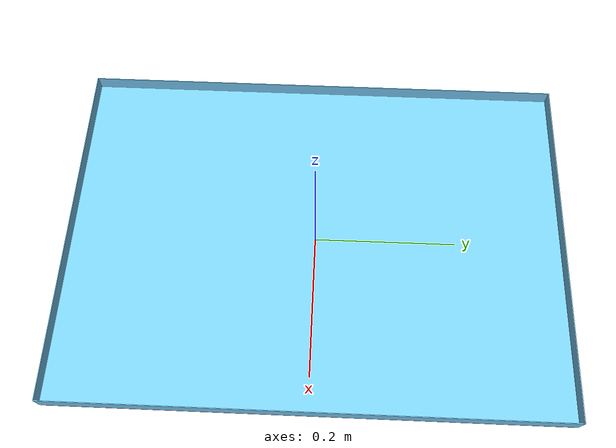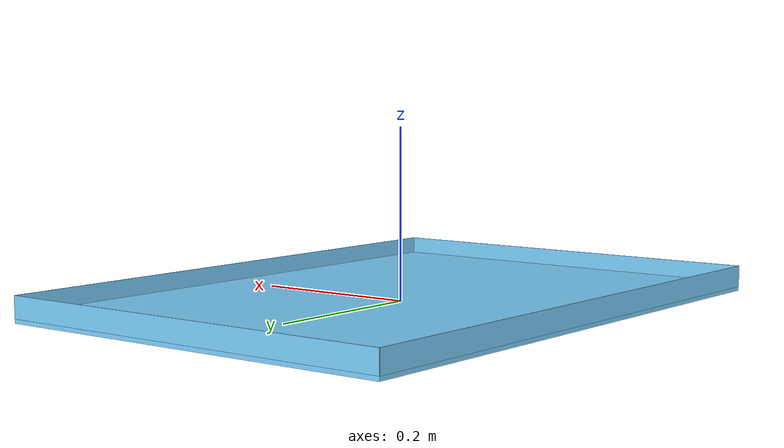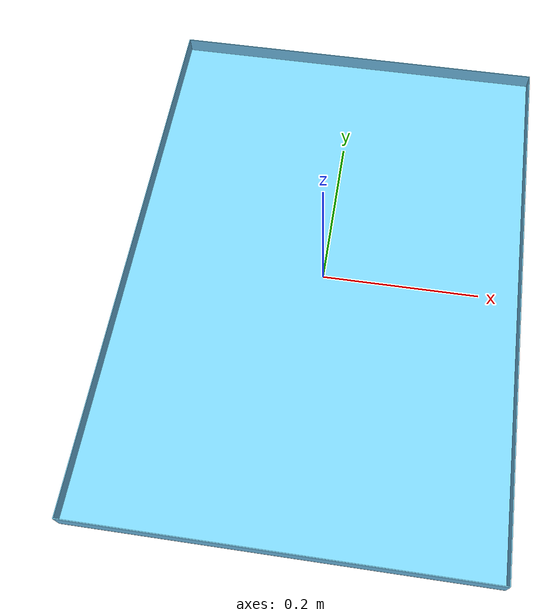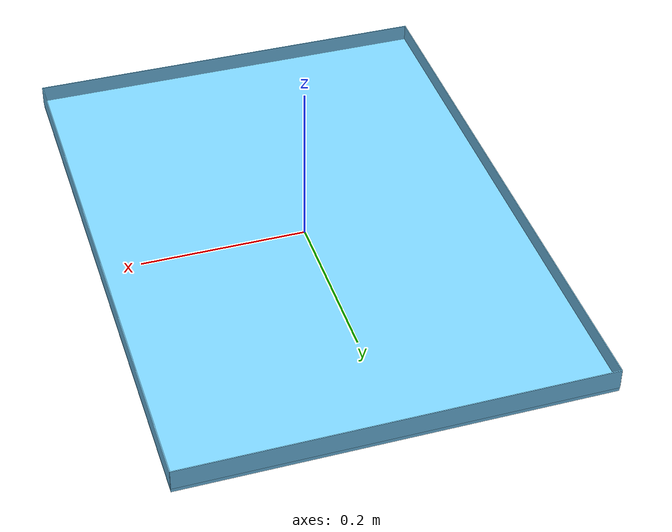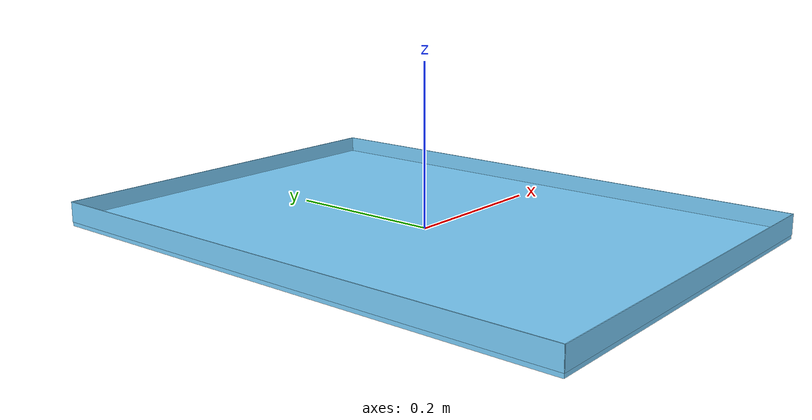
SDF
<?xml version="1.0" ?>
<sdf version="1.6">
  <model name="kit_tray">
    <static>false</static>
    <link name="tray">
      <inertial>
        <mass>1</mass>
        <inertia>
          <ixx>0.0408</ixx>
          <ixy>0</ixy>
          <ixz>0</ixz>
          <iyy>0.02084</iyy>
          <iyz>0</iyz>
          <izz>0.0616</izz>
        </inertia>
      </inertial>
      <sensor name='kit_tray_contact' type='contact'>
        <update_rate>1</update_rate>
        <contact>
          <collision>tray_collision</collision>
        </contact>
      </sensor>
      <gravity>false</gravity>
      <collision name="tray_collision">
        <max_contacts>10</max_contacts>
        <surface>
          <contact>
            <ode>
              <max_vel>0.0</max_vel>
              <min_depth>0.001</min_depth>
            </ode>
          </contact>
        </surface>
        <geometry>
          <box>
            <size>0.5 0.7 0.01</size>
          </box>
        </geometry>
      </collision>
      <collision name="tray_collision1">
        <pose>0.25 0 0.0127 0 0 0</pose>
        <max_contacts>10</max_contacts>
        <surface>
          <contact>
            <ode>
              <max_vel>0.0</max_vel>
              <min_depth>0.001</min_depth>
            </ode>
          </contact>
        </surface>
        <geometry>
          <box>
            <size>0.001 0.7 0.0254</size>
          </box>
        </geometry>
      </collision>
      <visual name="tray_visual1">
        <pose>0.25 0 0.0127 0 0 0</pose>
        <geometry>
          <box>
            <size>0.001 0.7 0.0254</size>
          </box>
        </geometry>
        <material>
          <ambient>0.48627451 0.819607843 1 1</ambient>
          <diffuse>0.48627451 0.819607843 1 1</diffuse>
        </material>
      </visual>

      <collision name="tray_collision2">
        <pose>-0.25 0 0.0127 0 0 0</pose>
        <max_contacts>10</max_contacts>
        <surface>
          <contact>
            <ode>
              <max_vel>0.0</max_vel>
              <min_depth>0.001</min_depth>
            </ode>
          </contact>
        </surface>
        <geometry>
          <box>
            <size>0.001 0.7 0.0254</size>
          </box>
        </geometry>
      </collision>
      <visual name="tray_visual2">
        <pose>-0.25 0 0.0127 0 0 0</pose>
        <geometry>
          <box>
            <size>0.001 0.7 0.0254</size>
          </box>
        </geometry>
        <material>
          <ambient>0.48627451 0.819607843 1 1</ambient>
          <diffuse>0.48627451 0.819607843 1 1</diffuse>
        </material>
      </visual>

      <collision name="tray_collision3">
        <pose>0 0.35 0.0127 0 0 0</pose>
        <max_contacts>10</max_contacts>
        <surface>
          <contact>
            <ode>
              <max_vel>0.0</max_vel>
              <min_depth>0.001</min_depth>
            </ode>
          </contact>
        </surface>
        <geometry>
          <box>
            <size>0.5 0.001 0.0254</size>
          </box>
        </geometry>
      </collision>
      <visual name="tray_visual3">
        <pose>0 0.35 0.0127 0 0 0</pose>
        <geometry>
          <box>
            <size>0.5 0.001 0.0254</size>
          </box>
        </geometry>
        <material>
          <ambient>0.48627451 0.819607843 1 1</ambient>
          <diffuse>0.48627451 0.819607843 1 1</diffuse>
        </material>
      </visual>

      <collision name="tray_collision4">
        <pose>0 -0.35 0.0127 0 0 0</pose>
        <max_contacts>10</max_contacts>
        <surface>
          <contact>
            <ode>
              <max_vel>0.0</max_vel>
              <min_depth>0.001</min_depth>
            </ode>
          </contact>
        </surface>
        <geometry>
          <box>
            <size>0.5 0.001 0.0254</size>
          </box>
        </geometry>
      </collision>
      <visual name="tray_visual4">
        <pose>0 -0.35 0.0127 0 0 0</pose>
        <geometry>
          <box>
            <size>0.5 0.001 0.0254</size>
          </box>
        </geometry>
        <material>
          <ambient>0.48627451 0.819607843 1 1</ambient>
          <diffuse>0.48627451 0.819607843 1 1</diffuse>
        </material>
      </visual>

      <visual name="visual">
        <geometry>
          <box>
            <size>0.5 0.7 0.01</size>
          </box>
        </geometry>
        <material>
          <ambient>0.48627451 0.819607843 1 1</ambient>
          <diffuse>0.48627451 0.819607843 1 1</diffuse>
        </material>
      </visual>
    </link>
    <allow_auto_disable>0</allow_auto_disable>
  </model>
</sdf>
